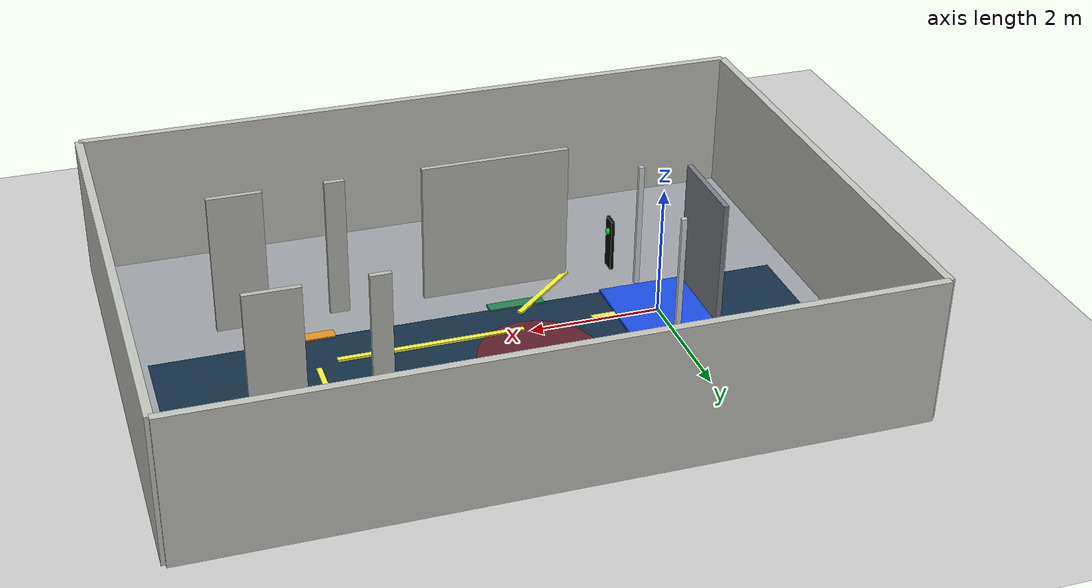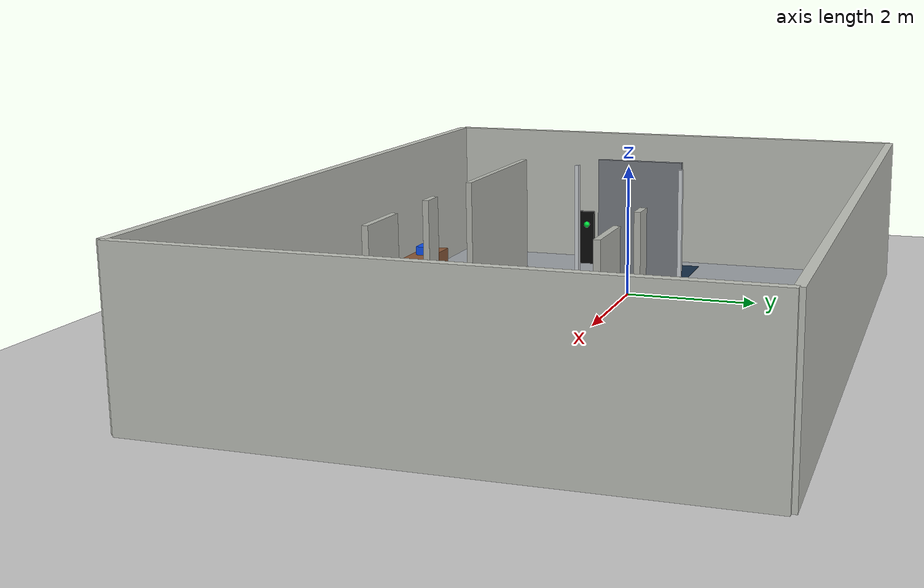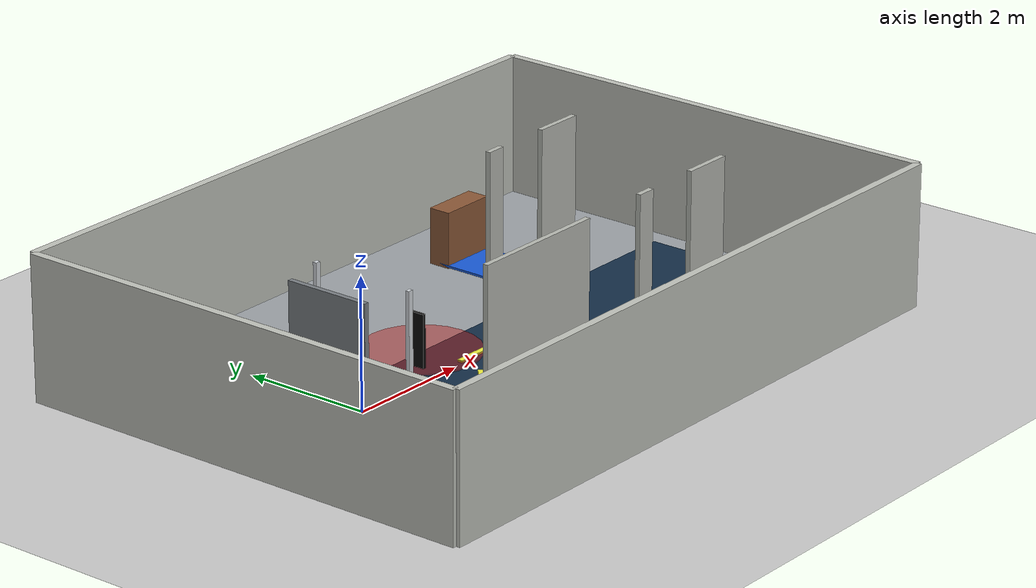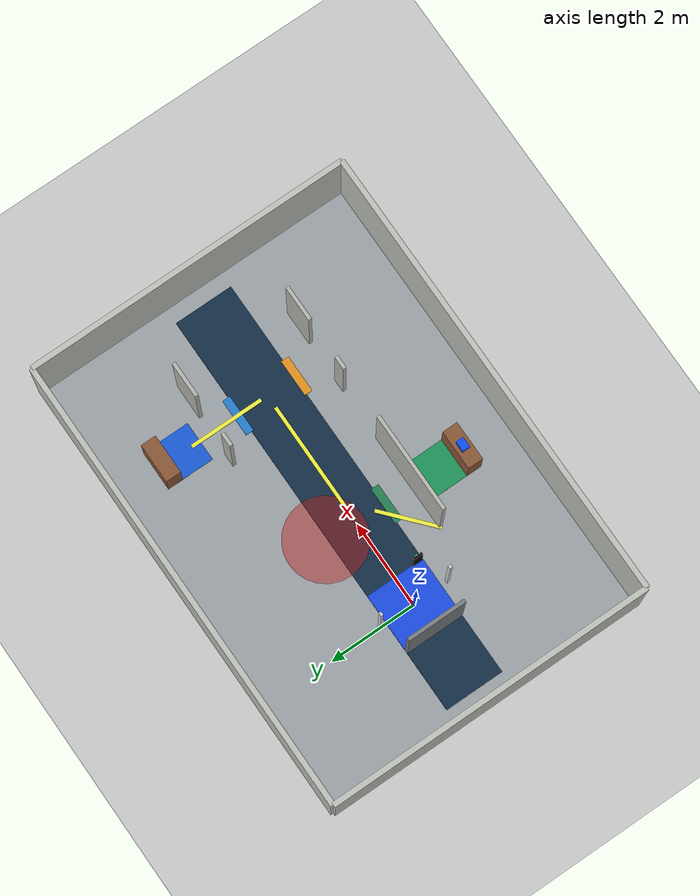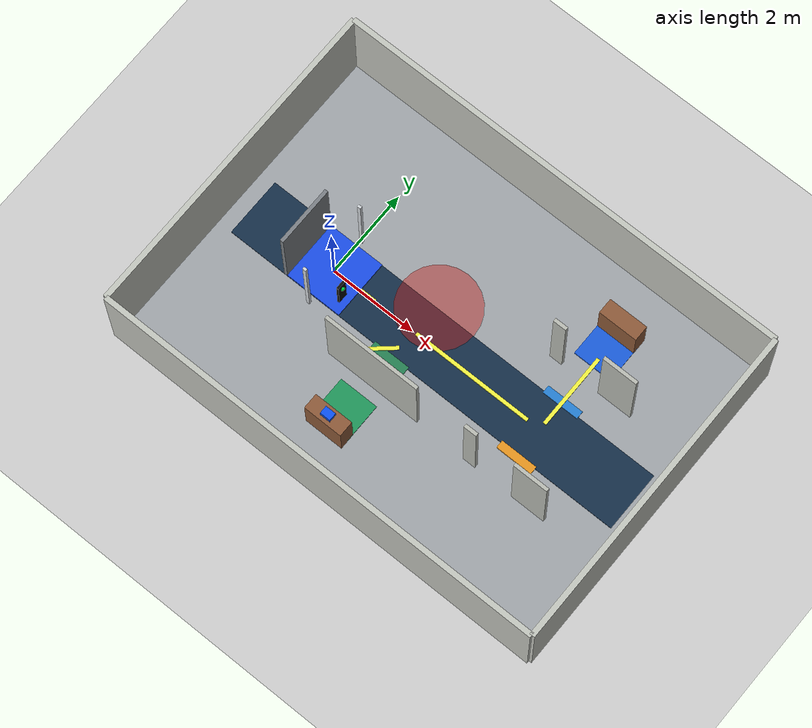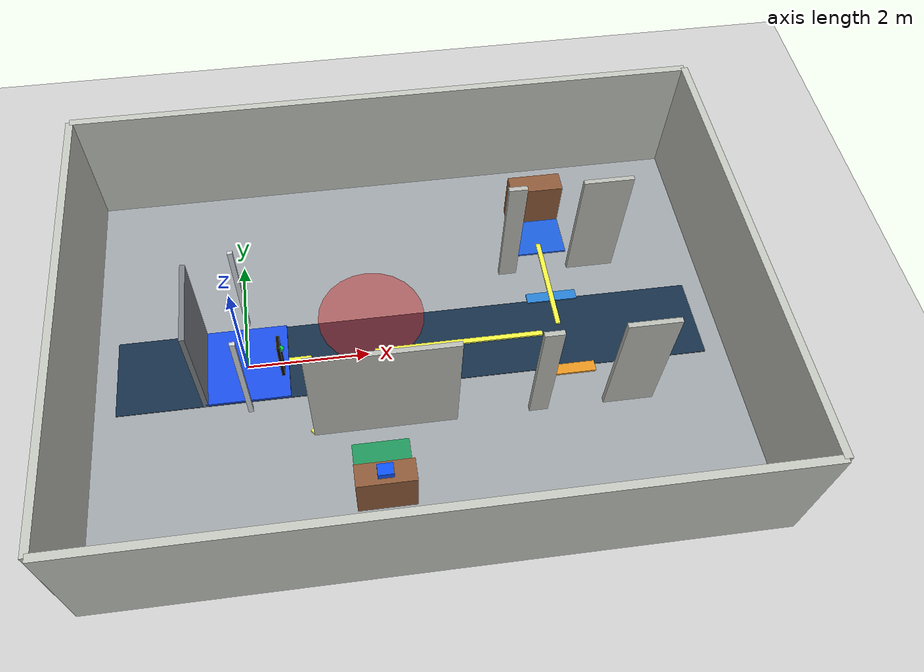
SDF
<sdf version="1.6">
 <world name="hotel_healthcare">
  <include><uri>model://sun</uri></include>
  <include><uri>model://ground_plane</uri></include>
  <physics type="ode">
   <max_step_size>0.002</max_step_size>
   <real_time_update_rate>500</real_time_update_rate>
  </physics>
  <plugin name="hotel_gazebo_ros_state" filename="libgazebo_ros_state.so">
   <ros><namespace>/gazebo</namespace></ros>
   <update_rate>20.0</update_rate>
  </plugin>
  <model name="hotel_floor_plan">
   <static>true</static>
   <link name="structure">
    <visual name="floor">
     <pose>2.7 0 0.011 0 0 0</pose>
     <geometry><box><size>10.4 7.4 0.02</size></box></geometry>
     <material><ambient>0.62 0.64 0.66 1</ambient><diffuse>0.62 0.64 0.66 1</diffuse></material>
    </visual>
    <visual name="corridor_carpet">
     <pose>2.7 0 0.025 0 0 0</pose>
     <geometry><box><size>9.6 1.35 0.025</size></box></geometry>
     <material><ambient>0.08 0.18 0.28 1</ambient><diffuse>0.08 0.18 0.28 1</diffuse></material>
    </visual>
    <visual name="north_wall">
     <pose>2.7 3.7 1.1 0 0 0</pose>
     <geometry><box><size>10.4 0.12 2.2</size></box></geometry>
     <material><ambient>0.76 0.77 0.74 1</ambient></material>
    </visual>
    <collision name="north_wall_col">
     <pose>2.7 3.7 1.1 0 0 0</pose>
     <geometry><box><size>10.4 0.12 2.2</size></box></geometry>
    </collision>
    <visual name="south_wall">
     <pose>2.7 -3.7 1.1 0 0 0</pose>
     <geometry><box><size>10.4 0.12 2.2</size></box></geometry>
     <material><ambient>0.76 0.77 0.74 1</ambient></material>
    </visual>
    <collision name="south_wall_col">
     <pose>2.7 -3.7 1.1 0 0 0</pose>
     <geometry><box><size>10.4 0.12 2.2</size></box></geometry>
    </collision>
    <visual name="west_wall">
     <pose>-2.5 0 1.1 0 0 0</pose>
     <geometry><box><size>0.12 7.4 2.2</size></box></geometry>
     <material><ambient>0.76 0.77 0.74 1</ambient></material>
    </visual>
    <collision name="west_wall_col">
     <pose>-2.5 0 1.1 0 0 0</pose>
     <geometry><box><size>0.12 7.4 2.2</size></box></geometry>
    </collision>
    <visual name="east_wall">
     <pose>7.9 0 1.1 0 0 0</pose>
     <geometry><box><size>0.12 7.4 2.2</size></box></geometry>
     <material><ambient>0.76 0.77 0.74 1</ambient></material>
    </visual>
    <collision name="east_wall_col">
     <pose>7.9 0 1.1 0 0 0</pose>
     <geometry><box><size>0.12 7.4 2.2</size></box></geometry>
    </collision>
    <visual name="room101_front_wall">
     <pose>2.125 -1.35 1.1 0 0 0</pose>
     <geometry><box><size>2.25 0.08 2.2</size></box></geometry>
     <material><ambient>0.72 0.73 0.70 1</ambient></material>
    </visual>
    <collision name="room101_front_wall_col">
     <pose>2.125 -1.35 1.1 0 0 0</pose>
     <geometry><box><size>2.25 0.08 2.2</size></box></geometry>
    </collision>
    <visual name="room102_wall_left">
     <pose>4.55 -1.35 1.1 0 0 0</pose>
     <geometry><box><size>0.3 0.08 2.2</size></box></geometry>
     <material><ambient>0.72 0.73 0.70 1</ambient></material>
    </visual>
    <collision name="room102_wall_left_col">
     <pose>4.55 -1.35 1.1 0 0 0</pose>
     <geometry><box><size>0.3 0.08 2.2</size></box></geometry>
    </collision>
    <visual name="room102_wall_right">
     <pose>6.0 -1.35 1.1 0 0 0</pose>
     <geometry><box><size>0.8 0.08 2.2</size></box></geometry>
     <material><ambient>0.72 0.73 0.70 1</ambient></material>
    </visual>
    <collision name="room102_wall_right_col">
     <pose>6.0 -1.35 1.1 0 0 0</pose>
     <geometry><box><size>0.8 0.08 2.2</size></box></geometry>
    </collision>
    <visual name="room302_wall_left">
     <pose>4.55 1.35 1.1 0 0 0</pose>
     <geometry><box><size>0.3 0.08 2.2</size></box></geometry>
     <material><ambient>0.72 0.73 0.70 1</ambient></material>
    </visual>
    <collision name="room302_wall_left_col">
     <pose>4.55 1.35 1.1 0 0 0</pose>
     <geometry><box><size>0.3 0.08 2.2</size></box></geometry>
    </collision>
    <visual name="room302_wall_right">
     <pose>6.0 1.35 1.1 0 0 0</pose>
     <geometry><box><size>0.8 0.08 2.2</size></box></geometry>
     <material><ambient>0.72 0.73 0.70 1</ambient></material>
    </visual>
    <collision name="room302_wall_right_col">
     <pose>6.0 1.35 1.1 0 0 0</pose>
     <geometry><box><size>0.8 0.08 2.2</size></box></geometry>
    </collision>
    <visual name="room101_door">
     <pose>2.0 -0.72 0.04 0 0 0</pose>
     <geometry><box><size>0.85 0.18 0.04</size></box></geometry>
     <material><ambient>0.15 0.50 0.32 1</ambient></material>
    </visual>
    <visual name="room102_door">
     <pose>5.2 -0.72 0.04 0 0 0</pose>
     <geometry><box><size>0.85 0.18 0.04</size></box></geometry>
     <material><ambient>0.9 0.58 0.12 1</ambient></material>
    </visual>
    <visual name="room302_door">
     <pose>5.2 0.72 0.04 0 0 0</pose>
     <geometry><box><size>0.85 0.18 0.04</size></box></geometry>
     <material><ambient>0.15 0.50 0.82 1</ambient></material>
    </visual>
    <visual name="pickup_marker">
     <pose>2.0 -2.1 0.055 0 0 0</pose>
     <geometry><box><size>0.9 0.9 0.035</size></box></geometry>
     <material><ambient>0.12 0.58 0.35 1</ambient></material>
    </visual>
    <visual name="delivery_marker">
     <pose>5.2 2.1 0.055 0 0 0</pose>
     <geometry><box><size>0.9 0.9 0.035</size></box></geometry>
     <material><ambient>0.10 0.36 0.85 1</ambient></material>
    </visual>
    <visual name="safety_zone_marker">
     <pose>2.1 0.7 0.05 0 0 0</pose>
     <geometry><cylinder><radius>0.9</radius><length>0.025</length></cylinder></geometry>
     <material><ambient>0.75 0.10 0.08 0.45</ambient><diffuse>0.75 0.10 0.08 0.45</diffuse></material>
    </visual>
    <visual name="route_1">
     <pose>0.6 0 0.06 0 0 0</pose>
     <geometry><box><size>0.9 0.08 0.035</size></box></geometry>
     <material><ambient>0.95 0.95 0.25 1</ambient></material>
    </visual>
    <visual name="route_2">
     <pose>1.5 -0.9 0.06 0 0 0.72</pose>
     <geometry><box><size>1.4 0.08 0.035</size></box></geometry>
     <material><ambient>0.95 0.95 0.25 1</ambient></material>
    </visual>
    <visual name="route_3">
     <pose>3.5 0 0.06 0 0 0</pose>
     <geometry><box><size>2.8 0.08 0.035</size></box></geometry>
     <material><ambient>0.95 0.95 0.25 1</ambient></material>
    </visual>
    <visual name="route_4">
     <pose>5.2 1.0 0.06 0 0 1.5708</pose>
     <geometry><box><size>1.7 0.08 0.035</size></box></geometry>
     <material><ambient>0.95 0.95 0.25 1</ambient></material>
    </visual>
   </link>
  </model>
  <model name="mission_props">
   <static>true</static>
   <link name="props">
    <visual name="pickup_counter">
     <pose>2.0 -2.55 0.45 0 0 0</pose>
     <geometry><box><size>0.9 0.35 0.9</size></box></geometry>
     <material><ambient>0.55 0.35 0.22 1</ambient></material>
    </visual>
    <collision name="pickup_counter_col">
     <pose>2.0 -2.55 0.45 0 0 0</pose>
     <geometry><box><size>0.9 0.35 0.9</size></box></geometry>
    </collision>
    <visual name="delivery_counter">
     <pose>5.2 2.55 0.45 0 0 0</pose>
     <geometry><box><size>0.9 0.35 0.9</size></box></geometry>
     <material><ambient>0.55 0.35 0.22 1</ambient></material>
    </visual>
    <collision name="delivery_counter_col">
     <pose>5.2 2.55 0.45 0 0 0</pose>
     <geometry><box><size>0.9 0.35 0.9</size></box></geometry>
    </collision>
   </link>
  </model>
  <model name="medical_kit_pickup">
   <static>false</static>
   <pose>2.0 -2.55 0.96 0 0 0</pose>
   <link name="kit">
    <gravity>false</gravity>
    <visual name="blue_box">
     <geometry><box><size>0.24 0.18 0.12</size></box></geometry>
     <material><ambient>0.05 0.32 0.95 1</ambient><diffuse>0.05 0.32 0.95 1</diffuse></material>
    </visual>
   </link>
  </model>
  <model name="elevator_A">
   <static>true</static>
   <link name="car">
    <visual name="floor_marker">
     <pose>0 0 0.065 0 0 0</pose>
     <geometry><box><size>1.35 1.35 0.045</size></box></geometry>
     <material><ambient>0.1 0.3 0.9 1</ambient><diffuse>0.1 0.3 0.9 1</diffuse></material>
    </visual>
    <collision name="floor_marker_col">
     <pose>0 0 0.065 0 0 0</pose>
     <geometry><box><size>1.35 1.35 0.045</size></box></geometry>
    </collision>
    <visual name="back_wall">
     <pose>-0.68 0 1 0 0 0</pose>
     <geometry><box><size>0.08 1.35 2.0</size></box></geometry>
     <material><ambient>0.48 0.50 0.52 1</ambient></material>
    </visual>
    <collision name="back_wall_col">
     <pose>-0.68 0 1 0 0 0</pose>
     <geometry><box><size>0.08 1.35 2.0</size></box></geometry>
    </collision>
    <visual name="left_door_open">
     <pose>0.03 0.82 1 0 0 0</pose>
     <geometry><box><size>0.08 0.06 2.0</size></box></geometry>
     <material><ambient>0.82 0.84 0.86 1</ambient></material>
    </visual>
    <collision name="left_door_open_col">
     <pose>0.03 0.82 1 0 0 0</pose>
     <geometry><box><size>0.08 0.06 2.0</size></box></geometry>
    </collision>
    <visual name="right_door_open">
     <pose>0.03 -0.82 1 0 0 0</pose>
     <geometry><box><size>0.08 0.06 2.0</size></box></geometry>
     <material><ambient>0.82 0.84 0.86 1</ambient></material>
    </visual>
    <collision name="right_door_open_col">
     <pose>0.03 -0.82 1 0 0 0</pose>
     <geometry><box><size>0.08 0.06 2.0</size></box></geometry>
    </collision>
    <visual name="panel">
     <pose>0.62 -0.48 1 0 0 0</pose>
     <geometry><box><size>0.05 0.22 0.8</size></box></geometry>
     <material><ambient>0.04 0.04 0.04 1</ambient></material>
    </visual>
    <collision name="panel_col">
     <pose>0.62 -0.48 1 0 0 0</pose>
     <geometry><box><size>0.05 0.22 0.8</size></box></geometry>
    </collision>
    <visual name="panel_light">
     <pose>0.65 -0.48 1.2 0 0 0</pose>
     <geometry><sphere><radius>0.045</radius></sphere></geometry>
     <material><ambient>0.0 0.9 0.25 1</ambient></material>
    </visual>
   </link>
  </model>
 </world>
</sdf>
